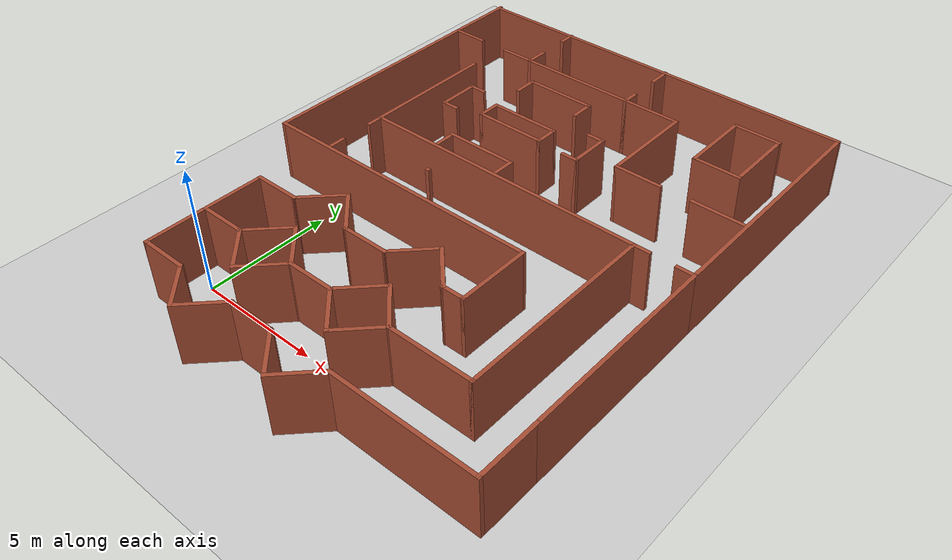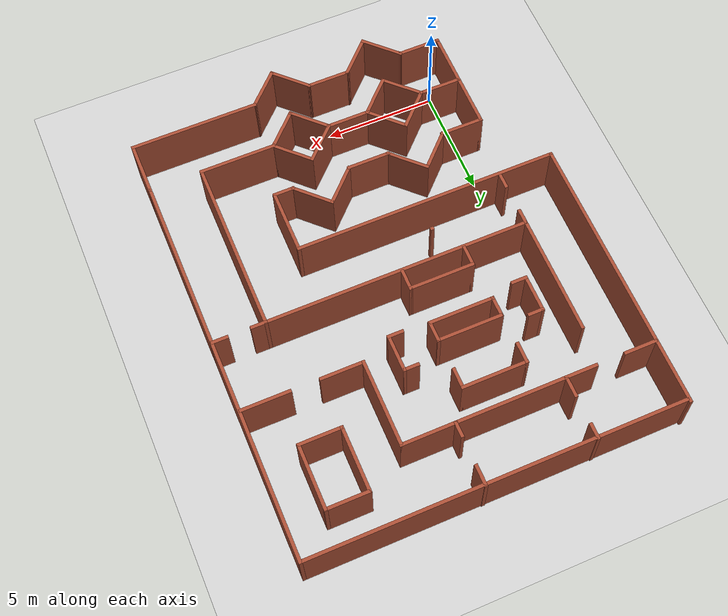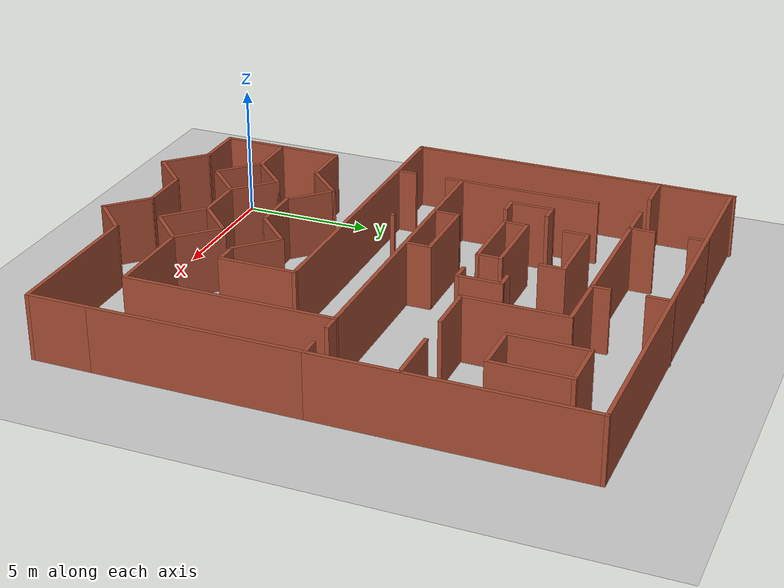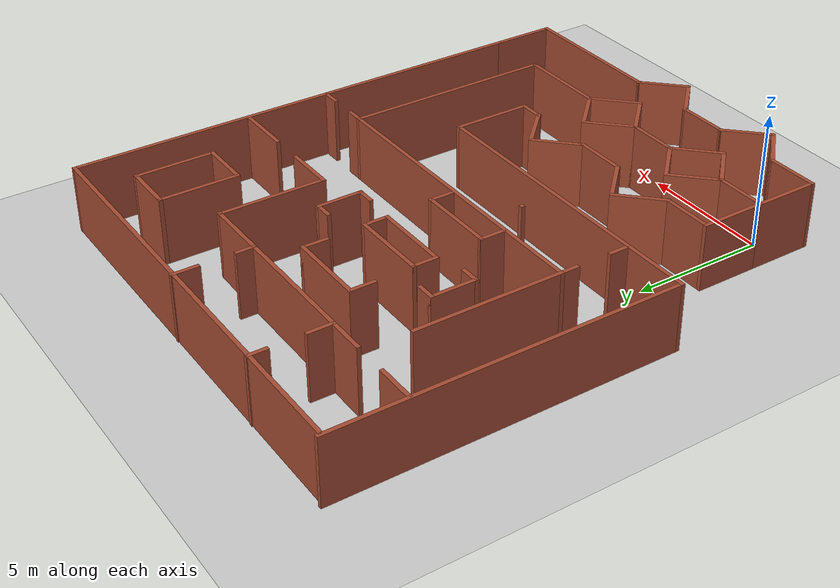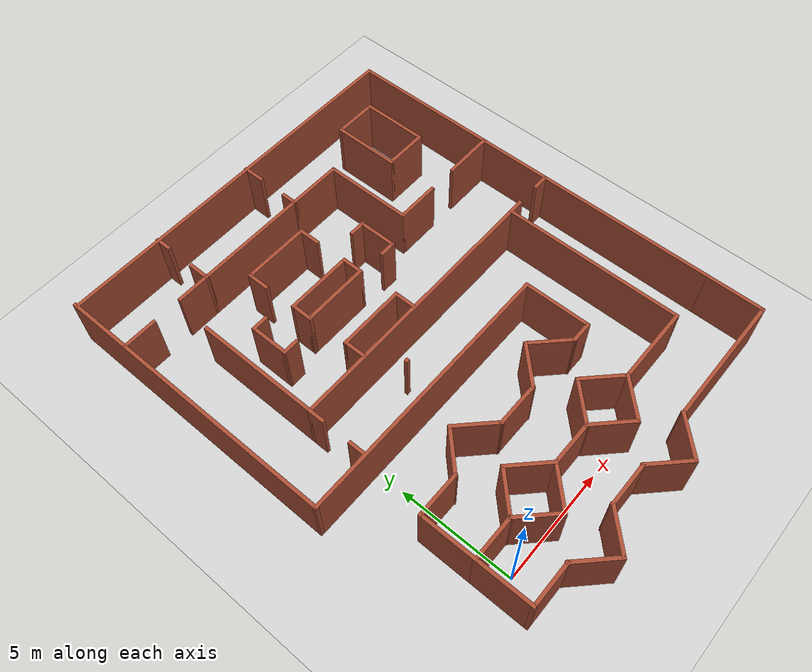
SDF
<sdf version="1.6">
 <world name="default">
  <light name="sun" type="directional">
   <pose>0 0 10 0 -0 0</pose>
   <diffuse>0.8 0.8 0.8 1</diffuse>
   <specular>0.2 0.2 0.2 1</specular>
   <attenuation>
    <range>1000</range>
    <constant>0.9</constant>
    <linear>0.01</linear>
    <quadratic>0.001</quadratic>
   </attenuation>
   <direction>-0.5 0.1 -0.9</direction>
  </light>
  <model name="ground_plane">
   <static>1</static>
   <link name="link">
    <collision name="collision">
     <geometry><plane><normal>0 0 1</normal><size>100 100</size></plane></geometry>
     <surface>
      <contact><collide_bitmask>65535</collide_bitmask></contact>
      <friction><ode><mu>100</mu><mu2>50</mu2></ode></friction>
     </surface>
    </collision>
    <visual name="visual">
     <cast_shadows>0</cast_shadows>
     <geometry><plane><normal>0 0 1</normal><size>100 100</size></plane></geometry>
     <material>
      <script><uri>file://media/materials/scripts/gazebo.material</uri><name>Gazebo/Grey</name></script>
     </material>
    </visual>
   </link>
  </model>
  <gravity>0 0 -9.8</gravity>
  <magnetic_field>6e-06 2.3e-05 -4.2e-05</magnetic_field>
  <atmosphere type="adiabatic"/>
  <physics name="default_physics" default="0" type="ode">
   <max_step_size>0.001</max_step_size>
   <real_time_factor>1</real_time_factor>
   <real_time_update_rate>1000</real_time_update_rate>
  </physics>
  <scene><ambient>0.4 0.4 0.4 1</ambient><background>0.7 0.7 0.7 1</background><shadows>1</shadows></scene>
  <audio><device>default</device></audio>
  <spherical_coordinates>
   <surface_model>EARTH_WGS84</surface_model>
   <latitude_deg>0</latitude_deg>
   <longitude_deg>0</longitude_deg>
   <elevation>0</elevation>
   <heading_deg>0</heading_deg>
  </spherical_coordinates>
  <model name="NEW_house">
   <pose>5.31578 8.02612 0 0 -0 0</pose>
   <link name="Wall_10">
    <collision name="Wall_10_Collision">
     <geometry><box><size>2 0.15 2.5</size></box></geometry>
     <pose>0 0 1.25 0 -0 0</pose>
    </collision>
    <visual name="Wall_10_Visual">
     <pose>0 0 1.25 0 -0 0</pose>
     <geometry><box><size>2 0.15 2.5</size></box></geometry>
     <material>
      <script><uri>file://media/materials/scripts/gazebo.material</uri><name>Gazebo/Bricks</name></script>
      <ambient>1 1 1 1</ambient>
     </material>
     <meta><layer>0</layer></meta>
    </visual>
    <pose>-3.77852 -10.0595 0 0 -0 -0.785398</pose>
   </link>
   <link name="Wall_103">
    <collision name="Wall_103_Collision">
     <geometry><box><size>1 0.15 2.5</size></box></geometry>
     <pose>0 0 1.25 0 -0 0</pose>
    </collision>
    <visual name="Wall_103_Visual">
     <pose>0 0 1.25 0 -0 0</pose>
     <geometry><box><size>1 0.15 2.5</size></box></geometry>
     <material>
      <script><uri>file://media/materials/scripts/gazebo.material</uri><name>Gazebo/Bricks</name></script>
      <ambient>1 1 1 1</ambient>
     </material>
     <meta><layer>0</layer></meta>
    </visual>
    <pose>-3.08788 6.19749 0 0 -0 1.5708</pose>
   </link>
   <link name="Wall_104">
    <collision name="Wall_104_Collision">
     <geometry><box><size>3 0.15 2.5</size></box></geometry>
     <pose>0 0 1.25 0 -0 0</pose>
    </collision>
    <visual name="Wall_104_Visual">
     <pose>0 0 1.25 0 -0 0</pose>
     <geometry><box><size>3 0.15 2.5</size></box></geometry>
     <material>
      <script><uri>file://media/materials/scripts/gazebo.material</uri><name>Gazebo/Bricks</name></script>
      <ambient>1 1 1 1</ambient>
     </material>
     <meta><layer>0</layer></meta>
    </visual>
    <pose>-1.66288 6.62249 0 0 -0 0</pose>
   </link>
   <link name="Wall_105">
    <collision name="Wall_105_Collision">
     <geometry><box><size>1 0.15 2.5</size></box></geometry>
     <pose>0 0 1.25 0 -0 0</pose>
    </collision>
    <visual name="Wall_105_Visual">
     <pose>0 0 1.25 0 -0 0</pose>
     <geometry><box><size>1 0.15 2.5</size></box></geometry>
     <material>
      <script><uri>file://media/materials/scripts/gazebo.material</uri><name>Gazebo/Bricks</name></script>
      <ambient>1 1 1 1</ambient>
     </material>
     <meta><layer>0</layer></meta>
    </visual>
    <pose>-0.237878 6.19749 0 0 -0 -1.5708</pose>
   </link>
   <link name="Wall_107">
    <collision name="Wall_107_Collision">
     <geometry><box><size>1 0.15 2.5</size></box></geometry>
     <pose>0 0 1.25 0 -0 0</pose>
    </collision>
    <visual name="Wall_107_Visual">
     <pose>0 0 1.25 0 -0 0</pose>
     <geometry><box><size>1 0.15 2.5</size></box></geometry>
     <material>
      <script><uri>file://media/materials/scripts/gazebo.material</uri><name>Gazebo/Bricks</name></script>
      <ambient>1 1 1 1</ambient>
     </material>
     <meta><layer>0</layer></meta>
    </visual>
    <pose>-3.03613 3.91574 0 0 -0 -1.5708</pose>
   </link>
   <link name="Wall_108">
    <collision name="Wall_108_Collision">
     <geometry><box><size>3 0.15 2.5</size></box></geometry>
     <pose>0 0 1.25 0 -0 0</pose>
    </collision>
    <visual name="Wall_108_Visual">
     <pose>0 0 1.25 0 -0 0</pose>
     <geometry><box><size>3 0.15 2.5</size></box></geometry>
     <material>
      <script><uri>file://media/materials/scripts/gazebo.material</uri><name>Gazebo/Bricks</name></script>
      <ambient>1 1 1 1</ambient>
     </material>
     <meta><layer>0</layer></meta>
    </visual>
    <pose>-1.61113 3.49074 0 0 -0 0</pose>
   </link>
   <link name="Wall_109">
    <collision name="Wall_109_Collision">
     <geometry><box><size>1 0.15 2.5</size></box></geometry>
     <pose>0 0 1.25 0 -0 0</pose>
    </collision>
    <visual name="Wall_109_Visual">
     <pose>0 0 1.25 0 -0 0</pose>
     <geometry><box><size>1 0.15 2.5</size></box></geometry>
     <material>
      <script><uri>file://media/materials/scripts/gazebo.material</uri><name>Gazebo/Bricks</name></script>
      <ambient>1 1 1 1</ambient>
     </material>
     <meta><layer>0</layer></meta>
    </visual>
    <pose>-0.186128 3.91574 0 0 -0 1.5708</pose>
   </link>
   <link name="Wall_11">
    <collision name="Wall_11_Collision">
     <geometry><box><size>2 0.15 2.5</size></box></geometry>
     <pose>0 0 1.25 0 -0 0</pose>
    </collision>
    <visual name="Wall_11_Visual">
     <pose>0 0 1.25 0 -0 0</pose>
     <geometry><box><size>2 0.15 2.5</size></box></geometry>
     <material>
      <script><uri>file://media/materials/scripts/gazebo.material</uri><name>Gazebo/Bricks</name></script>
      <ambient>1 1 1 1</ambient>
     </material>
     <meta><layer>0</layer></meta>
    </visual>
    <pose>-2.47037 -10.0595 0 0 -0 0.785398</pose>
   </link>
   <link name="Wall_110">
    <collision name="Wall_110_Collision">
     <geometry><box><size>3 0.15 2.5</size></box></geometry>
     <pose>0 0 1.25 0 -0 0</pose>
    </collision>
    <visual name="Wall_110_Visual">
     <pose>0 0 1.25 0 -0 0</pose>
     <geometry><box><size>3 0.15 2.5</size></box></geometry>
     <material>
      <script><uri>file://media/materials/scripts/gazebo.material</uri><name>Gazebo/Bricks</name></script>
      <ambient>1 1 1 1</ambient>
     </material>
     <meta><layer>0</layer></meta>
    </visual>
    <pose>-1.61113 4.34074 0 0 -0 3.14159</pose>
   </link>
   <link name="Wall_116">
    <collision name="Wall_116_Collision">
     <geometry><box><size>0.75 0.15 2.5</size></box></geometry>
     <pose>0 0 1.25 0 -0 0</pose>
    </collision>
    <visual name="Wall_116_Visual">
     <pose>0 0 1.25 0 -0 0</pose>
     <geometry><box><size>0.75 0.15 2.5</size></box></geometry>
     <material>
      <script><uri>file://media/materials/scripts/gazebo.material</uri><name>Gazebo/Bricks</name></script>
      <ambient>1 1 1 1</ambient>
     </material>
     <meta><layer>0</layer></meta>
    </visual>
    <pose>1.31762 4.99624 0 0 -0 0</pose>
   </link>
   <link name="Wall_117">
    <collision name="Wall_117_Collision">
     <geometry><box><size>1.75 0.15 2.5</size></box></geometry>
     <pose>0 0 1.25 0 -0 0</pose>
    </collision>
    <visual name="Wall_117_Visual">
     <pose>0 0 1.25 0 -0 0</pose>
     <geometry><box><size>1.75 0.15 2.5</size></box></geometry>
     <material>
      <script><uri>file://media/materials/scripts/gazebo.material</uri><name>Gazebo/Bricks</name></script>
      <ambient>1 1 1 1</ambient>
     </material>
     <meta><layer>0</layer></meta>
    </visual>
    <pose>1.61762 4.19624 0 0 -0 -1.5708</pose>
   </link>
   <link name="Wall_118">
    <collision name="Wall_118_Collision">
     <geometry><box><size>0.75 0.15 2.5</size></box></geometry>
     <pose>0 0 1.25 0 -0 0</pose>
    </collision>
    <visual name="Wall_118_Visual">
     <pose>0 0 1.25 0 -0 0</pose>
     <geometry><box><size>0.75 0.15 2.5</size></box></geometry>
     <material>
      <script><uri>file://media/materials/scripts/gazebo.material</uri><name>Gazebo/Bricks</name></script>
      <ambient>1 1 1 1</ambient>
     </material>
     <meta><layer>0</layer></meta>
    </visual>
    <pose>1.31762 3.39624 0 0 -0 3.14159</pose>
   </link>
   <link name="Wall_120">
    <collision name="Wall_120_Collision">
     <geometry><box><size>5.5 0.15 2.5</size></box></geometry>
     <pose>0 0 1.25 0 -0 0</pose>
    </collision>
    <visual name="Wall_120_Visual">
     <pose>0 0 1.25 0 -0 0</pose>
     <geometry><box><size>5.5 0.15 2.5</size></box></geometry>
     <material>
      <script><uri>file://media/materials/scripts/gazebo.material</uri><name>Gazebo/Bricks</name></script>
      <ambient>1 1 1 1</ambient>
     </material>
     <meta><layer>0</layer></meta>
    </visual>
    <pose>-5.85 3.46961 0 0 -0 1.5708</pose>
   </link>
   <link name="Wall_122">
    <collision name="Wall_122_Collision">
     <geometry><box><size>0.75 0.15 2.5</size></box></geometry>
     <pose>0 0 1.25 0 -0 0</pose>
    </collision>
    <visual name="Wall_122_Visual">
     <pose>0 0 1.25 0 -0 0</pose>
     <geometry><box><size>0.75 0.15 2.5</size></box></geometry>
     <material>
      <script><uri>file://media/materials/scripts/gazebo.material</uri><name>Gazebo/Bricks</name></script>
      <ambient>1 1 1 1</ambient>
     </material>
     <meta><layer>0</layer></meta>
    </visual>
    <pose>-4.40553 3.17337 0 0 -0 3.14159</pose>
   </link>
   <link name="Wall_123">
    <collision name="Wall_123_Collision">
     <geometry><box><size>1.75 0.15 2.5</size></box></geometry>
     <pose>0 0 1.25 0 -0 0</pose>
    </collision>
    <visual name="Wall_123_Visual">
     <pose>0 0 1.25 0 -0 0</pose>
     <geometry><box><size>1.75 0.15 2.5</size></box></geometry>
     <material>
      <script><uri>file://media/materials/scripts/gazebo.material</uri><name>Gazebo/Bricks</name></script>
      <ambient>1 1 1 1</ambient>
     </material>
     <meta><layer>0</layer></meta>
    </visual>
    <pose>-4.70553 3.97337 0 0 -0 1.5708</pose>
   </link>
   <link name="Wall_124">
    <collision name="Wall_124_Collision">
     <geometry><box><size>0.75 0.15 2.5</size></box></geometry>
     <pose>0 0 1.25 0 -0 0</pose>
    </collision>
    <visual name="Wall_124_Visual">
     <pose>0 0 1.25 0 -0 0</pose>
     <geometry><box><size>0.75 0.15 2.5</size></box></geometry>
     <material>
      <script><uri>file://media/materials/scripts/gazebo.material</uri><name>Gazebo/Bricks</name></script>
      <ambient>1 1 1 1</ambient>
     </material>
     <meta><layer>0</layer></meta>
    </visual>
    <pose>-4.40553 4.77337 0 0 -0 0</pose>
   </link>
   <link name="Wall_127">
    <collision name="Wall_127_Collision">
     <geometry><box><size>0.75 0.15 2.5</size></box></geometry>
     <pose>0 0 1.25 0 -0 0</pose>
    </collision>
    <visual name="Wall_127_Visual">
     <pose>0 0 1.25 0 -0 0</pose>
     <geometry><box><size>0.75 0.15 2.5</size></box></geometry>
     <material>
      <script><uri>file://media/materials/scripts/gazebo.material</uri><name>Gazebo/Bricks</name></script>
      <ambient>1 1 1 1</ambient>
     </material>
     <meta><layer>0</layer></meta>
    </visual>
    <pose>-5.85 -1.45539 0 0 -0 -1.5708</pose>
   </link>
   <link name="Wall_13">
    <collision name="Wall_13_Collision">
     <geometry><box><size>2 0.15 2.5</size></box></geometry>
     <pose>0 0 1.25 0 -0 0</pose>
    </collision>
    <visual name="Wall_13_Visual">
     <pose>0 0 1.25 0 -0 0</pose>
     <geometry><box><size>2 0.15 2.5</size></box></geometry>
     <material>
      <script><uri>file://media/materials/scripts/gazebo.material</uri><name>Gazebo/Bricks</name></script>
      <ambient>1 1 1 1</ambient>
     </material>
     <meta><layer>0</layer></meta>
    </visual>
    <pose>-0.891295 -7.05539 0 0 -0 0</pose>
   </link>
   <link name="Wall_14">
    <collision name="Wall_14_Collision">
     <geometry><box><size>2 0.15 2.5</size></box></geometry>
     <pose>0 0 1.25 0 -0 0</pose>
    </collision>
    <visual name="Wall_14_Visual">
     <pose>0 0 1.25 0 -0 0</pose>
     <geometry><box><size>2 0.15 2.5</size></box></geometry>
     <material>
      <script><uri>file://media/materials/scripts/gazebo.material</uri><name>Gazebo/Bricks</name></script>
      <ambient>1 1 1 1</ambient>
     </material>
     <meta><layer>0</layer></meta>
    </visual>
    <pose>0.687778 -6.40132 0 0 -0 0.785398</pose>
   </link>
   <link name="Wall_15">
    <collision name="Wall_15_Collision">
     <geometry><box><size>2 0.15 2.5</size></box></geometry>
     <pose>0 0 1.25 0 -0 0</pose>
    </collision>
    <visual name="Wall_15_Visual">
     <pose>0 0 1.25 0 -0 0</pose>
     <geometry><box><size>2 0.15 2.5</size></box></geometry>
     <material>
      <script><uri>file://media/materials/scripts/gazebo.material</uri><name>Gazebo/Bricks</name></script>
      <ambient>1 1 1 1</ambient>
     </material>
     <meta><layer>0</layer></meta>
    </visual>
    <pose>1.99593 -6.40132 0 0 -0 -0.785398</pose>
   </link>
   <link name="Wall_16">
    <collision name="Wall_16_Collision">
     <geometry><box><size>2 0.15 2.5</size></box></geometry>
     <pose>0 0 1.25 0 -0 0</pose>
    </collision>
    <visual name="Wall_16_Visual">
     <pose>0 0 1.25 0 -0 0</pose>
     <geometry><box><size>2 0.15 2.5</size></box></geometry>
     <material>
      <script><uri>file://media/materials/scripts/gazebo.material</uri><name>Gazebo/Bricks</name></script>
      <ambient>1 1 1 1</ambient>
     </material>
     <meta><layer>0</layer></meta>
    </visual>
    <pose>1.99593 -7.70947 0 0 -0 -2.35619</pose>
   </link>
   <link name="Wall_17">
    <collision name="Wall_17_Collision">
     <geometry><box><size>2 0.15 2.5</size></box></geometry>
     <pose>0 0 1.25 0 -0 0</pose>
    </collision>
    <visual name="Wall_17_Visual">
     <pose>0 0 1.25 0 -0 0</pose>
     <geometry><box><size>2 0.15 2.5</size></box></geometry>
     <material>
      <script><uri>file://media/materials/scripts/gazebo.material</uri><name>Gazebo/Bricks</name></script>
      <ambient>1 1 1 1</ambient>
     </material>
     <meta><layer>0</layer></meta>
    </visual>
    <pose>0.687778 -7.70947 0 0 -0 2.35619</pose>
   </link>
   <link name="Wall_19">
    <collision name="Wall_19_Collision">
     <geometry><box><size>2.5 0.15 2.5</size></box></geometry>
     <pose>0 0 1.25 0 -0 0</pose>
    </collision>
    <visual name="Wall_19_Visual">
     <pose>0 0 1.25 0 -0 0</pose>
     <geometry><box><size>2.5 0.15 2.5</size></box></geometry>
     <material>
      <script><uri>file://media/materials/scripts/gazebo.material</uri><name>Gazebo/Bricks</name></script>
      <ambient>1 1 1 1</ambient>
     </material>
     <meta><layer>0</layer></meta>
    </visual>
    <pose>-6.28259 -5.88039 0 0 -0 1.5708</pose>
   </link>
   <link name="Wall_2">
    <collision name="Wall_2_Collision">
     <geometry><box><size>2.5 0.15 2.5</size></box></geometry>
     <pose>0 0 1.25 0 -0 0</pose>
    </collision>
    <visual name="Wall_2_Visual">
     <pose>0 0 1.25 0 -0 0</pose>
     <geometry><box><size>2.5 0.15 2.5</size></box></geometry>
     <material>
      <script><uri>file://media/materials/scripts/gazebo.material</uri><name>Gazebo/Bricks</name></script>
      <ambient>1 1 1 1</ambient>
     </material>
     <meta><layer>0</layer></meta>
    </visual>
    <pose>-6.28259 -8.23039 0 0 -0 1.5708</pose>
   </link>
   <link name="Wall_20">
    <collision name="Wall_20_Collision">
     <geometry><box><size>2 0.15 2.5</size></box></geometry>
     <pose>0 0 1.25 0 -0 0</pose>
    </collision>
    <visual name="Wall_20_Visual">
     <pose>0 0 1.25 0 -0 0</pose>
     <geometry><box><size>2 0.15 2.5</size></box></geometry>
     <material>
      <script><uri>file://media/materials/scripts/gazebo.material</uri><name>Gazebo/Bricks</name></script>
      <ambient>1 1 1 1</ambient>
     </material>
     <meta><layer>0</layer></meta>
    </visual>
    <pose>-5.35759 -4.70539 0 0 -0 0</pose>
   </link>
   <link name="Wall_21">
    <collision name="Wall_21_Collision">
     <geometry><box><size>2 0.15 2.5</size></box></geometry>
     <pose>0 0 1.25 0 -0 0</pose>
    </collision>
    <visual name="Wall_21_Visual">
     <pose>0 0 1.25 0 -0 0</pose>
     <geometry><box><size>2 0.15 2.5</size></box></geometry>
     <material>
      <script><uri>file://media/materials/scripts/gazebo.material</uri><name>Gazebo/Bricks</name></script>
      <ambient>1 1 1 1</ambient>
     </material>
     <meta><layer>0</layer></meta>
    </visual>
    <pose>-3.77852 -4.05132 0 0 -0 0.785398</pose>
   </link>
   <link name="Wall_22">
    <collision name="Wall_22_Collision">
     <geometry><box><size>2 0.15 2.5</size></box></geometry>
     <pose>0 0 1.25 0 -0 0</pose>
    </collision>
    <visual name="Wall_22_Visual">
     <pose>0 0 1.25 0 -0 0</pose>
     <geometry><box><size>2 0.15 2.5</size></box></geometry>
     <material>
      <script><uri>file://media/materials/scripts/gazebo.material</uri><name>Gazebo/Bricks</name></script>
      <ambient>1 1 1 1</ambient>
     </material>
     <meta><layer>0</layer></meta>
    </visual>
    <pose>-2.47037 -4.05132 0 0 -0 -0.785398</pose>
   </link>
   <link name="Wall_23">
    <collision name="Wall_23_Collision">
     <geometry><box><size>2 0.15 2.5</size></box></geometry>
     <pose>0 0 1.25 0 -0 0</pose>
    </collision>
    <visual name="Wall_23_Visual">
     <pose>0 0 1.25 0 -0 0</pose>
     <geometry><box><size>2 0.15 2.5</size></box></geometry>
     <material>
      <script><uri>file://media/materials/scripts/gazebo.material</uri><name>Gazebo/Bricks</name></script>
      <ambient>1 1 1 1</ambient>
     </material>
     <meta><layer>0</layer></meta>
    </visual>
    <pose>-0.891295 -4.70539 0 0 -0 0</pose>
   </link>
   <link name="Wall_24">
    <collision name="Wall_24_Collision">
     <geometry><box><size>2 0.15 2.5</size></box></geometry>
     <pose>0 0 1.25 0 -0 0</pose>
    </collision>
    <visual name="Wall_24_Visual">
     <pose>0 0 1.25 0 -0 0</pose>
     <geometry><box><size>2 0.15 2.5</size></box></geometry>
     <material>
      <script><uri>file://media/materials/scripts/gazebo.material</uri><name>Gazebo/Bricks</name></script>
      <ambient>1 1 1 1</ambient>
     </material>
     <meta><layer>0</layer></meta>
    </visual>
    <pose>0.687778 -4.05132 0 0 -0 0.785398</pose>
   </link>
   <link name="Wall_25">
    <collision name="Wall_25_Collision">
     <geometry><box><size>2 0.15 2.5</size></box></geometry>
     <pose>0 0 1.25 0 -0 0</pose>
    </collision>
    <visual name="Wall_25_Visual">
     <pose>0 0 1.25 0 -0 0</pose>
     <geometry><box><size>2 0.15 2.5</size></box></geometry>
     <material>
      <script><uri>file://media/materials/scripts/gazebo.material</uri><name>Gazebo/Bricks</name></script>
      <ambient>1 1 1 1</ambient>
     </material>
     <meta><layer>0</layer></meta>
    </visual>
    <pose>1.99593 -4.05132 0 0 -0 -0.785398</pose>
   </link>
   <link name="Wall_26">
    <collision name="Wall_26_Collision">
     <geometry><box><size>1 0.15 2.5</size></box></geometry>
     <pose>0 0 1.25 0 -0 0</pose>
    </collision>
    <visual name="Wall_26_Visual">
     <pose>0 0 1.25 0 -0 0</pose>
     <geometry><box><size>1 0.15 2.5</size></box></geometry>
     <material>
      <script><uri>file://media/materials/scripts/gazebo.material</uri><name>Gazebo/Bricks</name></script>
      <ambient>1 1 1 1</ambient>
     </material>
     <meta><layer>0</layer></meta>
    </visual>
    <pose>3.075 -4.70539 0 0 -0 0</pose>
   </link>
   <link name="Wall_28">
    <collision name="Wall_28_Collision">
     <geometry><box><size>3.5 0.15 2.5</size></box></geometry>
     <pose>0 0 1.25 0 -0 0</pose>
    </collision>
    <visual name="Wall_28_Visual">
     <pose>0 0 1.25 0 -0 0</pose>
     <geometry><box><size>3.5 0.15 2.5</size></box></geometry>
     <material>
      <script><uri>file://media/materials/scripts/gazebo.material</uri><name>Gazebo/Bricks</name></script>
      <ambient>1 1 1 1</ambient>
     </material>
     <meta><layer>0</layer></meta>
    </visual>
    <pose>4.325 -7.05539 0 0 -0 0</pose>
   </link>
   <link name="Wall_3">
    <collision name="Wall_3_Collision">
     <geometry><box><size>2 0.15 2.5</size></box></geometry>
     <pose>0 0 1.25 0 -0 0</pose>
    </collision>
    <visual name="Wall_3_Visual">
     <pose>0 0 1.25 0 -0 0</pose>
     <geometry><box><size>2 0.15 2.5</size></box></geometry>
     <material>
      <script><uri>file://media/materials/scripts/gazebo.material</uri><name>Gazebo/Bricks</name></script>
      <ambient>1 1 1 1</ambient>
     </material>
     <meta><layer>0</layer></meta>
    </visual>
    <pose>-5.35759 -7.05539 0 0 -0 0</pose>
   </link>
   <link name="Wall_30">
    <collision name="Wall_30_Collision">
     <geometry><box><size>3 0.15 2.5</size></box></geometry>
     <pose>0 0 1.25 0 -0 0</pose>
    </collision>
    <visual name="Wall_30_Visual">
     <pose>0 0 1.25 0 -0 0</pose>
     <geometry><box><size>3 0.15 2.5</size></box></geometry>
     <material>
      <script><uri>file://media/materials/scripts/gazebo.material</uri><name>Gazebo/Bricks</name></script>
      <ambient>1 1 1 1</ambient>
     </material>
     <meta><layer>0</layer></meta>
    </visual>
    <pose>3.5 -3.28039 0 0 -0 1.5708</pose>
   </link>
   <link name="Wall_32">
    <collision name="Wall_32_Collision">
     <geometry><box><size>12 0.15 2.5</size></box></geometry>
     <pose>0 0 1.25 0 -0 0</pose>
    </collision>
    <visual name="Wall_32_Visual">
     <pose>0 0 1.25 0 -0 0</pose>
     <geometry><box><size>12 0.15 2.5</size></box></geometry>
     <material>
      <script><uri>file://media/materials/scripts/gazebo.material</uri><name>Gazebo/Bricks</name></script>
      <ambient>1 1 1 1</ambient>
     </material>
     <meta><layer>0</layer></meta>
    </visual>
    <pose>-2.425 -1.85539 0 0 -0 3.14159</pose>
   </link>
   <link name="Wall_34">
    <collision name="Wall_34_Collision">
     <geometry><box><size>2 0.15 2.5</size></box></geometry>
     <pose>0 0 1.25 0 -0 0</pose>
    </collision>
    <visual name="Wall_34_Visual">
     <pose>0 0 1.25 0 -0 0</pose>
     <geometry><box><size>2 0.15 2.5</size></box></geometry>
     <material>
      <script><uri>file://media/materials/scripts/gazebo.material</uri><name>Gazebo/Bricks</name></script>
      <ambient>1 1 1 1</ambient>
     </material>
     <meta><layer>0</layer></meta>
    </visual>
    <pose>-0.891295 -9.40539 0 0 -0 0</pose>
   </link>
   <link name="Wall_35">
    <collision name="Wall_35_Collision">
     <geometry><box><size>2 0.15 2.5</size></box></geometry>
     <pose>0 0 1.25 0 -0 0</pose>
    </collision>
    <visual name="Wall_35_Visual">
     <pose>0 0 1.25 0 -0 0</pose>
     <geometry><box><size>2 0.15 2.5</size></box></geometry>
     <material>
      <script><uri>file://media/materials/scripts/gazebo.material</uri><name>Gazebo/Bricks</name></script>
      <ambient>1 1 1 1</ambient>
     </material>
     <meta><layer>0</layer></meta>
    </visual>
    <pose>0.687778 -10.0595 0 0 -0 -0.785398</pose>
   </link>
   <link name="Wall_36">
    <collision name="Wall_36_Collision">
     <geometry><box><size>2 0.15 2.5</size></box></geometry>
     <pose>0 0 1.25 0 -0 0</pose>
    </collision>
    <visual name="Wall_36_Visual">
     <pose>0 0 1.25 0 -0 0</pose>
     <geometry><box><size>2 0.15 2.5</size></box></geometry>
     <material>
      <script><uri>file://media/materials/scripts/gazebo.material</uri><name>Gazebo/Bricks</name></script>
      <ambient>1 1 1 1</ambient>
     </material>
     <meta><layer>0</layer></meta>
    </visual>
    <pose>1.99593 -10.0595 0 0 -0 0.785398</pose>
   </link>
   <link name="Wall_39">
    <collision name="Wall_39_Collision">
     <geometry><box><size>2.5 0.15 2.5</size></box></geometry>
     <pose>0 0 1.25 0 -0 0</pose>
    </collision>
    <visual name="Wall_39_Visual">
     <pose>0 0 1.25 0 -0 0</pose>
     <geometry><box><size>2.5 0.15 2.5</size></box></geometry>
     <material>
      <script><uri>file://media/materials/scripts/gazebo.material</uri><name>Gazebo/Bricks</name></script>
      <ambient>1 1 1 1</ambient>
     </material>
     <meta><layer>0</layer></meta>
    </visual>
    <pose>8.35 -8.23039 0 0 -0 -1.5708</pose>
   </link>
   <link name="Wall_4">
    <collision name="Wall_4_Collision">
     <geometry><box><size>2 0.15 2.5</size></box></geometry>
     <pose>0 0 1.25 0 -0 0</pose>
    </collision>
    <visual name="Wall_4_Visual">
     <pose>0 0 1.25 0 -0 0</pose>
     <geometry><box><size>2 0.15 2.5</size></box></geometry>
     <material>
      <script><uri>file://media/materials/scripts/gazebo.material</uri><name>Gazebo/Bricks</name></script>
      <ambient>1 1 1 1</ambient>
     </material>
     <meta><layer>0</layer></meta>
    </visual>
    <pose>-3.77852 -6.40132 0 0 -0 0.785398</pose>
   </link>
   <link name="Wall_40">
    <collision name="Wall_40_Collision">
     <geometry><box><size>5.85 0.15 2.5</size></box></geometry>
     <pose>0 0 1.25 0 -0 0</pose>
    </collision>
    <visual name="Wall_40_Visual">
     <pose>0 0 1.25 0 -0 0</pose>
     <geometry><box><size>5.85 0.15 2.5</size></box></geometry>
     <material>
      <script><uri>file://media/materials/scripts/gazebo.material</uri><name>Gazebo/Bricks</name></script>
      <ambient>1 1 1 1</ambient>
     </material>
     <meta><layer>0</layer></meta>
    </visual>
    <pose>5.5 -9.40539 0 0 -0 3.14159</pose>
   </link>
   <link name="Wall_42">
    <collision name="Wall_42_Collision">
     <geometry><box><size>8 0.15 2.5</size></box></geometry>
     <pose>0 0 1.25 0 -0 0</pose>
    </collision>
    <visual name="Wall_42_Visual">
     <pose>0 0 1.25 0 -0 0</pose>
     <geometry><box><size>8 0.15 2.5</size></box></geometry>
     <material>
      <script><uri>file://media/materials/scripts/gazebo.material</uri><name>Gazebo/Bricks</name></script>
      <ambient>1 1 1 1</ambient>
     </material>
     <meta><layer>0</layer></meta>
    </visual>
    <pose>6 -3.13039 0 0 -0 1.5708</pose>
   </link>
   <link name="Wall_43">
    <collision name="Wall_43_Collision">
     <geometry><box><size>12 0.15 2.5</size></box></geometry>
     <pose>0 0 1.25 0 -0 0</pose>
    </collision>
    <visual name="Wall_43_Visual">
     <pose>0 0 1.25 0 -0 0</pose>
     <geometry><box><size>12 0.15 2.5</size></box></geometry>
     <material>
      <script><uri>file://media/materials/scripts/gazebo.material</uri><name>Gazebo/Bricks</name></script>
      <ambient>1 1 1 1</ambient>
     </material>
     <meta><layer>0</layer></meta>
    </visual>
    <pose>0.075 0.794606 0 0 -0 3.14159</pose>
   </link>
   <link name="Wall_45">
    <collision name="Wall_45_Collision">
     <geometry><box><size>8 0.15 2.5</size></box></geometry>
     <pose>0 0 1.25 0 -0 0</pose>
    </collision>
    <visual name="Wall_45_Visual">
     <pose>0 0 1.25 0 -0 0</pose>
     <geometry><box><size>8 0.15 2.5</size></box></geometry>
     <material>
      <script><uri>file://media/materials/scripts/gazebo.material</uri><name>Gazebo/Bricks</name></script>
      <ambient>1 1 1 1</ambient>
     </material>
     <meta><layer>0</layer></meta>
    </visual>
    <pose>8.35 -3.13039 0 0 -0 1.5708</pose>
   </link>
   <link name="Wall_47">
    <collision name="Wall_47_Collision">
     <geometry><box><size>0.75 0.15 2.5</size></box></geometry>
     <pose>0 0 1.25 0 -0 0</pose>
    </collision>
    <visual name="Wall_47_Visual">
     <pose>0 0 1.25 0 -0 0</pose>
     <geometry><box><size>0.75 0.15 2.5</size></box></geometry>
     <material>
      <script><uri>file://media/materials/scripts/gazebo.material</uri><name>Gazebo/Bricks</name></script>
      <ambient>1 1 1 1</ambient>
     </material>
     <meta><layer>0</layer></meta>
    </visual>
    <pose>6.3 0.794606 0 0 -0 0</pose>
   </link>
   <link name="Wall_49">
    <collision name="Wall_49_Collision">
     <geometry><box><size>0.8 0.15 2.5</size></box></geometry>
     <pose>0 0 1.25 0 -0 0</pose>
    </collision>
    <visual name="Wall_49_Visual">
     <pose>0 0 1.25 0 -0 0</pose>
     <geometry><box><size>0.8 0.15 2.5</size></box></geometry>
     <material>
      <script><uri>file://media/materials/scripts/gazebo.material</uri><name>Gazebo/Bricks</name></script>
      <ambient>1 1 1 1</ambient>
     </material>
     <meta><layer>0</layer></meta>
    </visual>
    <pose>8.025 0.794606 0 0 -0 0</pose>
   </link>
   <link name="Wall_5">
    <collision name="Wall_5_Collision">
     <geometry><box><size>2 0.15 2.5</size></box></geometry>
     <pose>0 0 1.25 0 -0 0</pose>
    </collision>
    <visual name="Wall_5_Visual">
     <pose>0 0 1.25 0 -0 0</pose>
     <geometry><box><size>2 0.15 2.5</size></box></geometry>
     <material>
      <script><uri>file://media/materials/scripts/gazebo.material</uri><name>Gazebo/Bricks</name></script>
      <ambient>1 1 1 1</ambient>
     </material>
     <meta><layer>0</layer></meta>
    </visual>
    <pose>-2.47037 -6.40132 0 0 -0 -0.785398</pose>
   </link>
   <link name="Wall_51">
    <collision name="Wall_51_Collision">
     <geometry><box><size>0.75 0.15 2.5</size></box></geometry>
     <pose>0 0 1.25 0 -0 0</pose>
    </collision>
    <visual name="Wall_51_Visual">
     <pose>0 0 1.25 0 -0 0</pose>
     <geometry><box><size>0.75 0.15 2.5</size></box></geometry>
     <material>
      <script><uri>file://media/materials/scripts/gazebo.material</uri><name>Gazebo/Bricks</name></script>
      <ambient>1 1 1 1</ambient>
     </material>
     <meta><layer>0</layer></meta>
    </visual>
    <pose>-5.85 0.494606 0 0 -0 -1.5708</pose>
   </link>
   <link name="Wall_57">
    <collision name="Wall_57_Collision">
     <geometry><box><size>0.169455 0.15 2.5</size></box></geometry>
     <pose>0 0 1.25 0 -0 0</pose>
    </collision>
    <visual name="Wall_57_Visual">
     <pose>0 0 1.25 0 -0 0</pose>
     <geometry><box><size>0.169455 0.15 2.5</size></box></geometry>
     <material>
      <script><uri>file://media/materials/scripts/gazebo.material</uri><name>Gazebo/Bricks</name></script>
      <ambient>0 0 0 1</ambient>
     </material>
     <meta><layer>0</layer></meta>
    </visual>
    <pose>-2.06052 -0.50795 0 0 -0 0</pose>
   </link>
   <link name="Wall_6">
    <collision name="Wall_6_Collision">
     <geometry><box><size>2 0.15 2.5</size></box></geometry>
     <pose>0 0 1.25 0 -0 0</pose>
    </collision>
    <visual name="Wall_6_Visual">
     <pose>0 0 1.25 0 -0 0</pose>
     <geometry><box><size>2 0.15 2.5</size></box></geometry>
     <material>
      <script><uri>file://media/materials/scripts/gazebo.material</uri><name>Gazebo/Bricks</name></script>
      <ambient>1 1 1 1</ambient>
     </material>
     <meta><layer>0</layer></meta>
    </visual>
    <pose>-2.47037 -7.70947 0 0 -0 -2.35619</pose>
   </link>
   <link name="Wall_60">
    <collision name="Wall_60_Collision">
     <geometry><box><size>10 0.15 2.5</size></box></geometry>
     <pose>0 0 1.25 0 -0 0</pose>
    </collision>
    <visual name="Wall_60_Visual">
     <pose>0 0 1.25 0 -0 0</pose>
     <geometry><box><size>10 0.15 2.5</size></box></geometry>
     <material>
      <script><uri>file://media/materials/scripts/gazebo.material</uri><name>Gazebo/Bricks</name></script>
      <ambient>1 1 1 1</ambient>
     </material>
     <meta><layer>0</layer></meta>
    </visual>
    <pose>8.35 5.71961 0 0 -0 1.5708</pose>
   </link>
   <link name="Wall_61">
    <collision name="Wall_61_Collision">
     <geometry><box><size>16.75 0.15 2.5</size></box></geometry>
     <pose>0 0 1.25 0 -0 0</pose>
    </collision>
    <visual name="Wall_61_Visual">
     <pose>0 0 1.25 0 -0 0</pose>
     <geometry><box><size>16.75 0.15 2.5</size></box></geometry>
     <material>
      <script><uri>file://media/materials/scripts/gazebo.material</uri><name>Gazebo/Bricks</name></script>
      <ambient>1 1 1 1</ambient>
     </material>
     <meta><layer>0</layer></meta>
    </visual>
    <pose>0.05 10.6446 0 0 -0 3.14159</pose>
   </link>
   <link name="Wall_63">
    <collision name="Wall_63_Collision">
     <geometry><box><size>12.75 0.15 2.5</size></box></geometry>
     <pose>0 0 1.25 0 -0 0</pose>
    </collision>
    <visual name="Wall_63_Visual">
     <pose>0 0 1.25 0 -0 0</pose>
     <geometry><box><size>12.75 0.15 2.5</size></box></geometry>
     <material>
      <script><uri>file://media/materials/scripts/gazebo.material</uri><name>Gazebo/Bricks</name></script>
      <ambient>1 1 1 1</ambient>
     </material>
     <meta><layer>0</layer></meta>
    </visual>
    <pose>-8.35 4.44461 0 0 -0 1.5708</pose>
   </link>
   <link name="Wall_65">
    <collision name="Wall_65_Collision">
     <geometry><box><size>1.5 0.15 2.5</size></box></geometry>
     <pose>0 0 1.25 0 -0 0</pose>
    </collision>
    <visual name="Wall_65_Visual">
     <pose>0 0 1.25 0 -0 0</pose>
     <geometry><box><size>1.5 0.15 2.5</size></box></geometry>
     <material>
      <script><uri>file://media/materials/scripts/gazebo.material</uri><name>Gazebo/Bricks</name></script>
      <ambient>1 1 1 1</ambient>
     </material>
     <meta><layer>0</layer></meta>
    </visual>
    <pose>-7.62219 7.87842 0 0 -0 0</pose>
   </link>
   <link name="Wall_67">
    <collision name="Wall_67_Collision">
     <geometry><box><size>1.5 0.15 2.5</size></box></geometry>
     <pose>0 0 1.25 0 -0 0</pose>
    </collision>
    <visual name="Wall_67_Visual">
     <pose>0 0 1.25 0 -0 0</pose>
     <geometry><box><size>1.5 0.15 2.5</size></box></geometry>
     <material>
      <script><uri>file://media/materials/scripts/gazebo.material</uri><name>Gazebo/Bricks</name></script>
      <ambient>1 1 1 1</ambient>
     </material>
     <meta><layer>0</layer></meta>
    </visual>
    <pose>-4.92219 7.87842 0 0 -0 0</pose>
   </link>
   <link name="Wall_68">
    <collision name="Wall_68_Collision">
     <geometry><box><size>1 0.15 2.5</size></box></geometry>
     <pose>0 0 1.25 0 -0 0</pose>
    </collision>
    <visual name="Wall_68_Visual">
     <pose>0 0 1.25 0 -0 0</pose>
     <geometry><box><size>1 0.15 2.5</size></box></geometry>
     <material>
      <script><uri>file://media/materials/scripts/gazebo.material</uri><name>Gazebo/Bricks</name></script>
      <ambient>1 1 1 1</ambient>
     </material>
     <meta><layer>0</layer></meta>
    </visual>
    <pose>-4.24719 8.30342 0 0 -0 1.5708</pose>
   </link>
   <link name="Wall_7">
    <collision name="Wall_7_Collision">
     <geometry><box><size>2 0.15 2.5</size></box></geometry>
     <pose>0 0 1.25 0 -0 0</pose>
    </collision>
    <visual name="Wall_7_Visual">
     <pose>0 0 1.25 0 -0 0</pose>
     <geometry><box><size>2 0.15 2.5</size></box></geometry>
     <material>
      <script><uri>file://media/materials/scripts/gazebo.material</uri><name>Gazebo/Bricks</name></script>
      <ambient>1 1 1 1</ambient>
     </material>
     <meta><layer>0</layer></meta>
    </visual>
    <pose>-3.77852 -7.70947 0 0 -0 2.35619</pose>
   </link>
   <link name="Wall_71">
    <collision name="Wall_71_Collision">
     <geometry><box><size>0.75 0.15 2.5</size></box></geometry>
     <pose>0 0 1.25 0 -0 0</pose>
    </collision>
    <visual name="Wall_71_Visual">
     <pose>0 0 1.25 0 -0 0</pose>
     <geometry><box><size>0.75 0.15 2.5</size></box></geometry>
     <material>
      <script><uri>file://media/materials/scripts/gazebo.material</uri><name>Gazebo/Bricks</name></script>
      <ambient>1 1 1 1</ambient>
     </material>
     <meta><layer>0</layer></meta>
    </visual>
    <pose>-4.24719 10.3784 0 0 -0 1.5708</pose>
   </link>
   <link name="Wall_73">
    <collision name="Wall_73_Collision">
     <geometry><box><size>5.03913 0.15 2.5</size></box></geometry>
     <pose>0 0 1.25 0 -0 0</pose>
    </collision>
    <visual name="Wall_73_Visual">
     <pose>0 0 1.25 0 -0 0</pose>
     <geometry><box><size>5.03913 0.15 2.5</size></box></geometry>
     <material>
      <script><uri>file://media/materials/scripts/gazebo.material</uri><name>Gazebo/Bricks</name></script>
      <ambient>1 1 1 1</ambient>
     </material>
     <meta><layer>0</layer></meta>
    </visual>
    <pose>-1.80262 7.87842 0 0 -0 0</pose>
   </link>
   <link name="Wall_79">
    <collision name="Wall_79_Collision">
     <geometry><box><size>0.75 0.15 2.5</size></box></geometry>
     <pose>0 0 1.25 0 -0 0</pose>
    </collision>
    <visual name="Wall_79_Visual">
     <pose>0 0 1.25 0 -0 0</pose>
     <geometry><box><size>0.75 0.15 2.5</size></box></geometry>
     <material>
      <script><uri>file://media/materials/scripts/gazebo.material</uri><name>Gazebo/Bricks</name></script>
      <ambient>1 1 1 1</ambient>
     </material>
     <meta><layer>0</layer></meta>
    </visual>
    <pose>0.641942 8.17842 0 0 -0 1.5708</pose>
   </link>
   <link name="Wall_81">
    <collision name="Wall_81_Collision">
     <geometry><box><size>1 0.15 2.5</size></box></geometry>
     <pose>0 0 1.25 0 -0 0</pose>
    </collision>
    <visual name="Wall_81_Visual">
     <pose>0 0 1.25 0 -0 0</pose>
     <geometry><box><size>1 0.15 2.5</size></box></geometry>
     <material>
      <script><uri>file://media/materials/scripts/gazebo.material</uri><name>Gazebo/Bricks</name></script>
      <ambient>1 1 1 1</ambient>
     </material>
     <meta><layer>0</layer></meta>
    </visual>
    <pose>0.641942 10.2534 0 0 -0 1.5708</pose>
   </link>
   <link name="Wall_83">
    <collision name="Wall_83_Collision">
     <geometry><box><size>2.5 0.15 2.5</size></box></geometry>
     <pose>0 0 1.25 0 -0 0</pose>
    </collision>
    <visual name="Wall_83_Visual">
     <pose>0 0 1.25 0 -0 0</pose>
     <geometry><box><size>2.5 0.15 2.5</size></box></geometry>
     <material>
      <script><uri>file://media/materials/scripts/gazebo.material</uri><name>Gazebo/Bricks</name></script>
      <ambient>1 1 1 1</ambient>
     </material>
     <meta><layer>0</layer></meta>
    </visual>
    <pose>1.81694 7.87842 0 0 -0 0</pose>
   </link>
   <link name="Wall_84">
    <collision name="Wall_84_Collision">
     <geometry><box><size>4 0.15 2.5</size></box></geometry>
     <pose>0 0 1.25 0 -0 0</pose>
    </collision>
    <visual name="Wall_84_Visual">
     <pose>0 0 1.25 0 -0 0</pose>
     <geometry><box><size>4 0.15 2.5</size></box></geometry>
     <material>
      <script><uri>file://media/materials/scripts/gazebo.material</uri><name>Gazebo/Bricks</name></script>
      <ambient>1 1 1 1</ambient>
     </material>
     <meta><layer>0</layer></meta>
    </visual>
    <pose>2.99194 5.95342 0 0 -0 -1.5708</pose>
   </link>
   <link name="Wall_85">
    <collision name="Wall_85_Collision">
     <geometry><box><size>2 0.15 2.5</size></box></geometry>
     <pose>0 0 1.25 0 -0 0</pose>
    </collision>
    <visual name="Wall_85_Visual">
     <pose>0 0 1.25 0 -0 0</pose>
     <geometry><box><size>2 0.15 2.5</size></box></geometry>
     <material>
      <script><uri>file://media/materials/scripts/gazebo.material</uri><name>Gazebo/Bricks</name></script>
      <ambient>1 1 1 1</ambient>
     </material>
     <meta><layer>0</layer></meta>
    </visual>
    <pose>3.91694 4.02842 0 0 -0 0</pose>
   </link>
   <link name="Wall_87">
    <collision name="Wall_87_Collision">
     <geometry><box><size>2.25 0.15 2.5</size></box></geometry>
     <pose>0 0 1.25 0 -0 0</pose>
    </collision>
    <visual name="Wall_87_Visual">
     <pose>0 0 1.25 0 -0 0</pose>
     <geometry><box><size>2.25 0.15 2.5</size></box></geometry>
     <material>
      <script><uri>file://media/materials/scripts/gazebo.material</uri><name>Gazebo/Bricks</name></script>
      <ambient>1 1 1 1</ambient>
     </material>
     <meta><layer>0</layer></meta>
    </visual>
    <pose>7.24194 4.02842 0 0 -0 0</pose>
   </link>
   <link name="Wall_9">
    <collision name="Wall_9_Collision">
     <geometry><box><size>2 0.15 2.5</size></box></geometry>
     <pose>0 0 1.25 0 -0 0</pose>
    </collision>
    <visual name="Wall_9_Visual">
     <pose>0 0 1.25 0 -0 0</pose>
     <geometry><box><size>2 0.15 2.5</size></box></geometry>
     <material>
      <script><uri>file://media/materials/scripts/gazebo.material</uri><name>Gazebo/Bricks</name></script>
      <ambient>1 1 1 1</ambient>
     </material>
     <meta><layer>0</layer></meta>
    </visual>
    <pose>-5.35759 -9.40539 0 0 -0 0</pose>
   </link>
   <link name="Wall_92">
    <collision name="Wall_92_Collision">
     <geometry><box><size>3 0.15 2.5</size></box></geometry>
     <pose>0 0 1.25 0 -0 0</pose>
    </collision>
    <visual name="Wall_92_Visual">
     <pose>0 0 1.25 0 -0 0</pose>
     <geometry><box><size>3 0.15 2.5</size></box></geometry>
     <material>
      <script><uri>file://media/materials/scripts/gazebo.material</uri><name>Gazebo/Bricks</name></script>
      <ambient>1 1 1 1</ambient>
     </material>
     <meta><layer>0</layer></meta>
    </visual>
    <pose>4.85609 7.70246 0 0 -0 -1.5708</pose>
   </link>
   <link name="Wall_93">
    <collision name="Wall_93_Collision">
     <geometry><box><size>2 0.15 2.5</size></box></geometry>
     <pose>0 0 1.25 0 -0 0</pose>
    </collision>
    <visual name="Wall_93_Visual">
     <pose>0 0 1.25 0 -0 0</pose>
     <geometry><box><size>2 0.15 2.5</size></box></geometry>
     <material>
      <script><uri>file://media/materials/scripts/gazebo.material</uri><name>Gazebo/Bricks</name></script>
      <ambient>1 1 1 1</ambient>
     </material>
     <meta><layer>0</layer></meta>
    </visual>
    <pose>5.78109 6.27746 0 0 -0 0</pose>
   </link>
   <link name="Wall_94">
    <collision name="Wall_94_Collision">
     <geometry><box><size>3 0.15 2.5</size></box></geometry>
     <pose>0 0 1.25 0 -0 0</pose>
    </collision>
    <visual name="Wall_94_Visual">
     <pose>0 0 1.25 0 -0 0</pose>
     <geometry><box><size>3 0.15 2.5</size></box></geometry>
     <material>
      <script><uri>file://media/materials/scripts/gazebo.material</uri><name>Gazebo/Bricks</name></script>
      <ambient>1 1 1 1</ambient>
     </material>
     <meta><layer>0</layer></meta>
    </visual>
    <pose>6.70609 7.70246 0 0 -0 1.5708</pose>
   </link>
   <link name="Wall_95">
    <collision name="Wall_95_Collision">
     <geometry><box><size>2 0.15 2.5</size></box></geometry>
     <pose>0 0 1.25 0 -0 0</pose>
    </collision>
    <visual name="Wall_95_Visual">
     <pose>0 0 1.25 0 -0 0</pose>
     <geometry><box><size>2 0.15 2.5</size></box></geometry>
     <material>
      <script><uri>file://media/materials/scripts/gazebo.material</uri><name>Gazebo/Bricks</name></script>
      <ambient>1 1 1 1</ambient>
     </material>
     <meta><layer>0</layer></meta>
    </visual>
    <pose>5.78109 9.12746 0 0 -0 3.14159</pose>
   </link>
   <link name="Wall_97">
    <collision name="Wall_97_Collision">
     <geometry><box><size>1 0.15 2.5</size></box></geometry>
     <pose>0 0 1.25 0 -0 0</pose>
    </collision>
    <visual name="Wall_97_Visual">
     <pose>0 0 1.25 0 -0 0</pose>
     <geometry><box><size>1 0.15 2.5</size></box></geometry>
     <material>
      <script><uri>file://media/materials/scripts/gazebo.material</uri><name>Gazebo/Bricks</name></script>
      <ambient>1 1 1 1</ambient>
     </material>
     <meta><layer>0</layer></meta>
    </visual>
    <pose>-2.94005 1.30006 0 0 -0 1.5708</pose>
   </link>
   <link name="Wall_98">
    <collision name="Wall_98_Collision">
     <geometry><box><size>3 0.15 2.5</size></box></geometry>
     <pose>0 0 1.25 0 -0 0</pose>
    </collision>
    <visual name="Wall_98_Visual">
     <pose>0 0 1.25 0 -0 0</pose>
     <geometry><box><size>3 0.15 2.5</size></box></geometry>
     <material>
      <script><uri>file://media/materials/scripts/gazebo.material</uri><name>Gazebo/Bricks</name></script>
      <ambient>1 1 1 1</ambient>
     </material>
     <meta><layer>0</layer></meta>
    </visual>
    <pose>-1.51505 1.72506 0 0 -0 0</pose>
   </link>
   <link name="Wall_99">
    <collision name="Wall_99_Collision">
     <geometry><box><size>1 0.15 2.5</size></box></geometry>
     <pose>0 0 1.25 0 -0 0</pose>
    </collision>
    <visual name="Wall_99_Visual">
     <pose>0 0 1.25 0 -0 0</pose>
     <geometry><box><size>1 0.15 2.5</size></box></geometry>
     <material>
      <script><uri>file://media/materials/scripts/gazebo.material</uri><name>Gazebo/Bricks</name></script>
      <ambient>1 1 1 1</ambient>
     </material>
     <meta><layer>0</layer></meta>
    </visual>
    <pose>-0.090047 1.30006 0 0 -0 -1.5708</pose>
   </link>
   <static>1</static>
  </model>
 </world>
</sdf>
